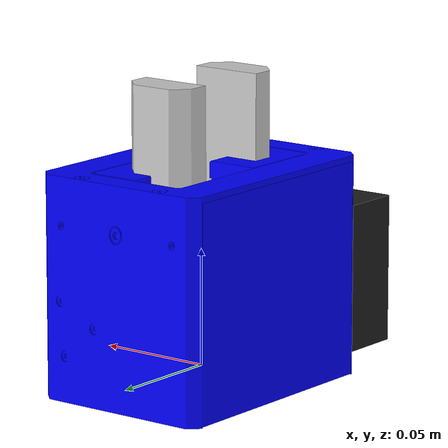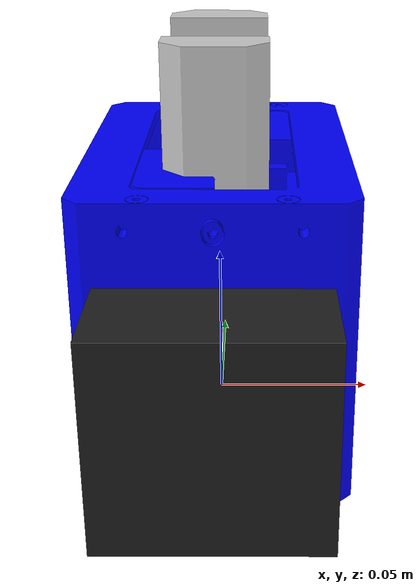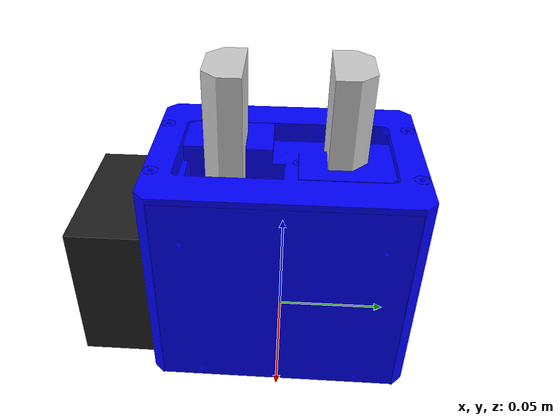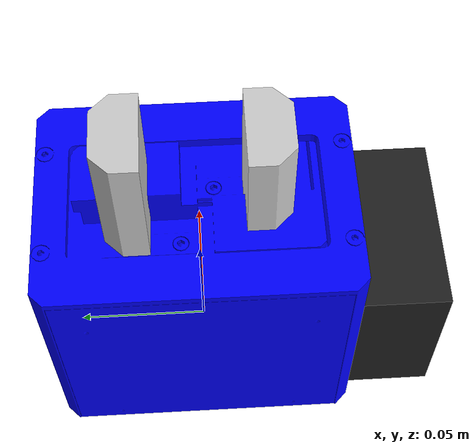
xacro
<?xml version="1.0"?>
<robot xmlns:xacro="http://www.ros.org/wiki/xacro"
  name="schunk_pg70">
  <xacro:include filename="$(find schunk_pg70)/urdf/pg70.urdf.xacro"/>

  <link name="base_link" />

  <xacro:schunk_pg70 name="schunk_pg70" parent="base_link" >
    <origin xyz="0 0 0" rpy="0 0 0" />
  </xacro:schunk_pg70>

 </robot>

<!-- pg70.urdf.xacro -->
<robot xmlns:xacro="http://www.ros.org/wiki/xacro">
  <property name="PI" value="3.1415926535897931" />
  <xacro:macro name="schunk_pg70" params="parent name *origin ">

    <joint name="${name}_base_joint" type="fixed" >
      <parent link="${parent}" />
      <child link="${name}_base_link" />
      <xacro:insert_block name="origin" />
    </joint>

<!--     PALM -->

    <link name="${name}_base_link">
      <visual>
        <geometry>
          <mesh filename="package://schunk_pg70/meshes/pg70.dae" />
        </geometry>
        <material name="blue">
          <color rgba="0 0 1 1"/>
        </material>
      </visual>
      <collision>
        <geometry>
          <mesh filename="package://schunk_pg70/meshes/pg70.dae" />
        </geometry>
	<material name="blue"/>
      </collision>
    </link>

<!-- LEFT FINGER BASE -->

    <joint name="${name}_finger_left_joint" type="prismatic" >
      <parent link="${name}_base_link" />
      <child link="${name}_fingertip_left_link" />
      <limit effort="100" lower="0.0005" upper="0.033" velocity="2.0"/>
      <origin xyz="0 0.008 0.0725" rpy="0 0 0"/>
      <axis xyz="0 1 0" />
    </joint>

    <link name="${name}_fingertip_left_link">
      <visual>
        <geometry>
			<mesh filename="package://schunk_pg70/meshes/gripper_claw.stl" scale="0.001 0.001 0.001"/>
        </geometry>
		<origin rpy="0 0 ${PI/2}"/>
        <material name="silver">
          <color rgba="0.8 0.8 0.8 1"/>
        </material>
      </visual>
      <collision>
        <geometry>
			<mesh filename="package://schunk_pg70/meshes/gripper_claw.stl" scale="0.001 0.001 0.001"/>
        </geometry>
		<origin rpy="0 0 ${PI/2}"/>
		<material name="black">
          <color rgba="1 0 0 1"/>
		</material>
      </collision>
    </link>

<!-- RIGHT FINGER BASE -->

    <joint name="${name}_finger_right_joint" type="prismatic" >
      <mimic joint="${name}_finger_left_joint" />
      <parent link="${name}_base_link" />
      <child link="${name}_fingertip_right_link" />
      <limit effort="1000" lower="0.0005" upper="0.033" velocity="2.0"/>
      <origin xyz="0 -0.008 0.0725" rpy="-0 0 0"/>
      <axis xyz="0 -1 0" />
    </joint>

    <link name="${name}_fingertip_right_link">
      <visual>
        <geometry>
			<mesh filename="package://schunk_pg70/meshes/gripper_claw.stl" scale="0.001 0.001 0.001"/>
		</geometry>
		<origin rpy="0 0 ${-PI/2}"/>
	<material name="silver" />

      </visual>
      <collision>
        <geometry>
			<mesh filename="package://schunk_pg70/meshes/gripper_claw.stl" scale="0.001 0.001 0.001"/>
        </geometry>
		<origin rpy="0 0 ${-PI/2}"/>
	<material name="black"/>
     </collision>
    </link>

 <!-- black box on the side of the gripper -->
 <link name="${name}_side_box">
   <visual>
      <geometry>
	<box size="0.03185 0.0669 0.06399"/>
      </geometry>
    <origin xyz="0 0 0"/>
    <material name="black">
	<color rgba="0.1225 0.1225 0.1255 1"/>
    </material>
   </visual>
   <collision>
      <geometry>
	<box size="0.03185 0.0669 0.06399"/>
      </geometry>
      	<origin xyz="0 0 0"/>
   </collision>
  </link>

  <joint name="box_to_base" type="fixed">
    <axis xyz="1 0 0"/>
	<parent link="${name}_base_link"/>
	<child link="${name}_side_box"/>
	<origin xyz="0 -0.072 0.03"  rpy="0 0 ${PI/2}"/>
  </joint>

  <transmission name="${name}_tran1">
      <type>transmission_interface/SimpleTransmission</type>
	  <joint name="${name}_finger_left_joint">
          <hardwareInterface>PositionJointInterface</hardwareInterface>
      </joint>
	  <actuator name="${name}_motor1">
          <hardwareInterface>PositionJointInterface</hardwareInterface>
      </actuator>
  </transmission>

  <transmission name="${name}_tran2">
      <type>transmission_interface/SimpleTransmission</type>
	  <joint name="${name}_finger_right_joint">
          <hardwareInterface>PositionJointInterface</hardwareInterface>
      </joint>
	  <actuator name="${name}_motor2">
          <hardwareInterface>PositionJointInterface</hardwareInterface>
      </actuator>
  </transmission>

  </xacro:macro>
</robot>
